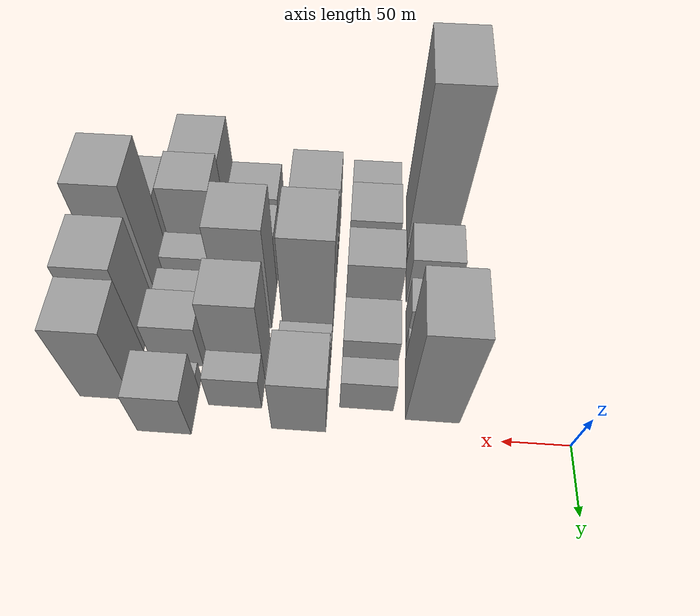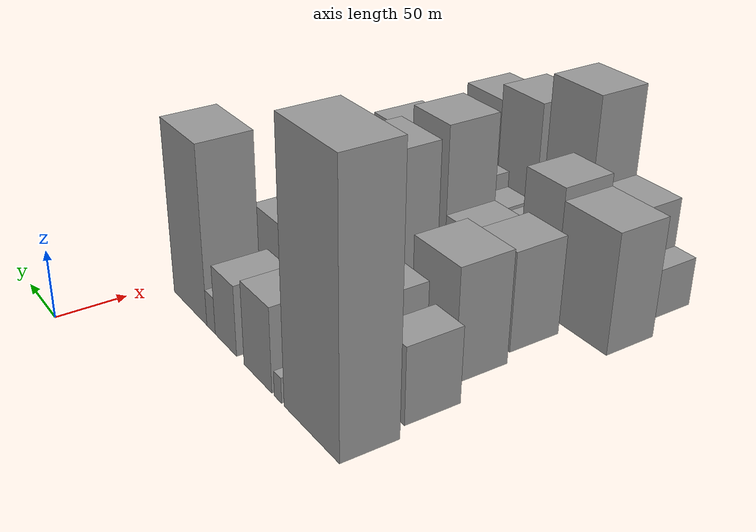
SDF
<sdf version="1.6">
 <world name="default">
  <model name="building_18">
   <static>1</static>
   <pose>100.0000 -195.5753 0 0.000000 0.000000 0.000000</pose>
   <link name="link">
    <pose>0 0 93.00 0 0 0</pose>
    <collision name="collision"><geometry><box><size>40.0000 61.5694 186.0000</size></box></geometry></collision>
    <visual name="visual">
     <cast_shadows>0</cast_shadows>
     <geometry><box><size>40.0000 61.5694 186.0000</size></box></geometry>
     <material>
      <script>
       <uri>model://grey_wall/materials/scripts</uri>
       <uri>model://grey_wall/materials/textures</uri>
       <name>vrc/grey_wall</name>
      </script>
     </material>
    </visual>
   </link>
  </model>
  <model name="building_19">
   <static>1</static>
   <pose>100.0000 -157.3529 0 0.000000 0.000000 0.000000</pose>
   <link name="link">
    <pose>0 0 9.00 0 0 0</pose>
    <collision name="collision"><geometry><box><size>40.0000 8.8755 18.0000</size></box></geometry></collision>
    <visual name="visual">
     <cast_shadows>0</cast_shadows>
     <geometry><box><size>40.0000 8.8755 18.0000</size></box></geometry>
     <material>
      <script>
       <uri>model://grey_wall/materials/scripts</uri>
       <uri>model://grey_wall/materials/textures</uri>
       <name>vrc/grey_wall</name>
      </script>
     </material>
    </visual>
   </link>
  </model>
  <model name="building_20">
   <static>1</static>
   <pose>100.0000 -132.1527 0 0.000000 0.000000 0.000000</pose>
   <link name="link">
    <pose>0 0 30.00 0 0 0</pose>
    <collision name="collision"><geometry><box><size>40.0000 35.5249 60.0000</size></box></geometry></collision>
    <visual name="visual">
     <cast_shadows>0</cast_shadows>
     <geometry><box><size>40.0000 35.5249 60.0000</size></box></geometry>
     <material>
      <script>
       <uri>model://grey_wall/materials/scripts</uri>
       <uri>model://grey_wall/materials/textures</uri>
       <name>vrc/grey_wall</name>
      </script>
     </material>
    </visual>
   </link>
  </model>
  <model name="building_21">
   <static>1</static>
   <pose>100.0000 -89.5267 0 0.000000 0.000000 0.000000</pose>
   <link name="link">
    <pose>0 0 25.50 0 0 0</pose>
    <collision name="collision"><geometry><box><size>40.0000 29.7271 51.0000</size></box></geometry></collision>
    <visual name="visual">
     <cast_shadows>0</cast_shadows>
     <geometry><box><size>40.0000 29.7271 51.0000</size></box></geometry>
     <material>
      <script>
       <uri>model://grey_wall/materials/scripts</uri>
       <uri>model://grey_wall/materials/textures</uri>
       <name>vrc/grey_wall</name>
      </script>
     </material>
    </visual>
   </link>
  </model>
  <model name="building_22">
   <static>1</static>
   <pose>100.0000 -68.5226 0 0.000000 0.000000 0.000000</pose>
   <link name="link">
    <pose>0 0 13.50 0 0 0</pose>
    <collision name="collision"><geometry><box><size>40.0000 12.2811 27.0000</size></box></geometry></collision>
    <visual name="visual">
     <cast_shadows>0</cast_shadows>
     <geometry><box><size>40.0000 12.2811 27.0000</size></box></geometry>
     <material>
      <script>
       <uri>model://grey_wall/materials/scripts</uri>
       <uri>model://grey_wall/materials/textures</uri>
       <name>vrc/grey_wall</name>
      </script>
     </material>
    </visual>
   </link>
  </model>
  <model name="building_23">
   <static>1</static>
   <pose>100.0000 -37.1999 0 0.000000 0.000000 0.000000</pose>
   <link name="link">
    <pose>0 0 64.50 0 0 0</pose>
    <collision name="collision"><geometry><box><size>40.0000 50.3643 129.0000</size></box></geometry></collision>
    <visual name="visual">
     <cast_shadows>0</cast_shadows>
     <geometry><box><size>40.0000 50.3643 129.0000</size></box></geometry>
     <material>
      <script>
       <uri>model://grey_wall/materials/scripts</uri>
       <uri>model://grey_wall/materials/textures</uri>
       <name>vrc/grey_wall</name>
      </script>
     </material>
    </visual>
   </link>
  </model>
  <model name="building_67">
   <static>1</static>
   <pose>149.0000 -203.9752 0 0.000000 0.000000 0.000000</pose>
   <link name="link">
    <pose>0 0 27.00 0 0 0</pose>
    <collision name="collision"><geometry><box><size>40.0000 27.6906 54.0000</size></box></geometry></collision>
    <visual name="visual">
     <cast_shadows>0</cast_shadows>
     <geometry><box><size>40.0000 27.6906 54.0000</size></box></geometry>
     <material>
      <script>
       <uri>model://grey_wall/materials/scripts</uri>
       <uri>model://grey_wall/materials/textures</uri>
       <name>vrc/grey_wall</name>
      </script>
     </material>
    </visual>
   </link>
  </model>
  <model name="building_68">
   <static>1</static>
   <pose>149.0000 -163.5747 0 0.000000 0.000000 0.000000</pose>
   <link name="link">
    <pose>0 0 33.00 0 0 0</pose>
    <collision name="collision"><geometry><box><size>40.0000 39.1105 66.0000</size></box></geometry></collision>
    <visual name="visual">
     <cast_shadows>0</cast_shadows>
     <geometry><box><size>40.0000 39.1105 66.0000</size></box></geometry>
     <material>
      <script>
       <uri>model://grey_wall/materials/scripts</uri>
       <uri>model://grey_wall/materials/textures</uri>
       <name>vrc/grey_wall</name>
      </script>
     </material>
    </visual>
   </link>
  </model>
  <model name="building_69">
   <static>1</static>
   <pose>149.0000 -134.3335 0 0.000000 0.000000 0.000000</pose>
   <link name="link">
    <pose>0 0 16.50 0 0 0</pose>
    <collision name="collision"><geometry><box><size>40.0000 19.3720 33.0000</size></box></geometry></collision>
    <visual name="visual">
     <cast_shadows>0</cast_shadows>
     <geometry><box><size>40.0000 19.3720 33.0000</size></box></geometry>
     <material>
      <script>
       <uri>model://grey_wall/materials/scripts</uri>
       <uri>model://grey_wall/materials/textures</uri>
       <name>vrc/grey_wall</name>
      </script>
     </material>
    </visual>
   </link>
  </model>
  <model name="building_70">
   <static>1</static>
   <pose>149.0000 -98.1172 0 0.000000 0.000000 0.000000</pose>
   <link name="link">
    <pose>0 0 48.00 0 0 0</pose>
    <collision name="collision"><geometry><box><size>40.0000 33.0605 96.0000</size></box></geometry></collision>
    <visual name="visual">
     <cast_shadows>0</cast_shadows>
     <geometry><box><size>40.0000 33.0605 96.0000</size></box></geometry>
     <material>
      <script>
       <uri>model://grey_wall/materials/scripts</uri>
       <uri>model://grey_wall/materials/textures</uri>
       <name>vrc/grey_wall</name>
      </script>
     </material>
    </visual>
   </link>
  </model>
  <model name="building_71">
   <static>1</static>
   <pose>149.0000 -78.0625 0 0.000000 0.000000 0.000000</pose>
   <link name="link">
    <pose>0 0 7.50 0 0 0</pose>
    <collision name="collision"><geometry><box><size>40.0000 7.0490 15.0000</size></box></geometry></collision>
    <visual name="visual">
     <cast_shadows>0</cast_shadows>
     <geometry><box><size>40.0000 7.0490 15.0000</size></box></geometry>
     <material>
      <script>
       <uri>model://grey_wall/materials/scripts</uri>
       <uri>model://grey_wall/materials/textures</uri>
       <name>vrc/grey_wall</name>
      </script>
     </material>
    </visual>
   </link>
  </model>
  <model name="building_72">
   <static>1</static>
   <pose>149.0000 -56.8983 0 0.000000 0.000000 0.000000</pose>
   <link name="link">
    <pose>0 0 33.00 0 0 0</pose>
    <collision name="collision"><geometry><box><size>40.0000 35.2795 66.0000</size></box></geometry></collision>
    <visual name="visual">
     <cast_shadows>0</cast_shadows>
     <geometry><box><size>40.0000 35.2795 66.0000</size></box></geometry>
     <material>
      <script>
       <uri>model://grey_wall/materials/scripts</uri>
       <uri>model://grey_wall/materials/textures</uri>
       <name>vrc/grey_wall</name>
      </script>
     </material>
    </visual>
   </link>
  </model>
  <model name="building_73">
   <static>1</static>
   <pose>149.0000 -28.7446 0 0.000000 0.000000 0.000000</pose>
   <link name="link">
    <pose>0 0 21.00 0 0 0</pose>
    <collision name="collision"><geometry><box><size>40.0000 21.0278 42.0000</size></box></geometry></collision>
    <visual name="visual">
     <cast_shadows>0</cast_shadows>
     <geometry><box><size>40.0000 21.0278 42.0000</size></box></geometry>
     <material>
      <script>
       <uri>model://grey_wall/materials/scripts</uri>
       <uri>model://grey_wall/materials/textures</uri>
       <name>vrc/grey_wall</name>
      </script>
     </material>
    </visual>
   </link>
  </model>
  <model name="building_116">
   <static>1</static>
   <pose>198.0000 -177.5219 0 0.000000 0.000000 0.000000</pose>
   <link name="link">
    <pose>0 0 40.50 0 0 0</pose>
    <collision name="collision"><geometry><box><size>40.0000 46.4395 81.0000</size></box></geometry></collision>
    <visual name="visual">
     <cast_shadows>0</cast_shadows>
     <geometry><box><size>40.0000 46.4395 81.0000</size></box></geometry>
     <material>
      <script>
       <uri>model://grey_wall/materials/scripts</uri>
       <uri>model://grey_wall/materials/textures</uri>
       <name>vrc/grey_wall</name>
      </script>
     </material>
    </visual>
   </link>
  </model>
  <model name="building_117">
   <static>1</static>
   <pose>198.0000 -144.3898 0 0.000000 0.000000 0.000000</pose>
   <link name="link">
    <pose>0 0 18.00 0 0 0</pose>
    <collision name="collision"><geometry><box><size>40.0000 19.8248 36.0000</size></box></geometry></collision>
    <visual name="visual">
     <cast_shadows>0</cast_shadows>
     <geometry><box><size>40.0000 19.8248 36.0000</size></box></geometry>
     <material>
      <script>
       <uri>model://grey_wall/materials/scripts</uri>
       <uri>model://grey_wall/materials/textures</uri>
       <name>vrc/grey_wall</name>
      </script>
     </material>
    </visual>
   </link>
  </model>
  <model name="building_118">
   <static>1</static>
   <pose>198.0000 -103.3089 0 0.000000 0.000000 0.000000</pose>
   <link name="link">
    <pose>0 0 61.50 0 0 0</pose>
    <collision name="collision"><geometry><box><size>40.0000 44.3372 123.0000</size></box></geometry></collision>
    <visual name="visual">
     <cast_shadows>0</cast_shadows>
     <geometry><box><size>40.0000 44.3372 123.0000</size></box></geometry>
     <material>
      <script>
       <uri>model://grey_wall/materials/scripts</uri>
       <uri>model://grey_wall/materials/textures</uri>
       <name>vrc/grey_wall</name>
      </script>
     </material>
    </visual>
   </link>
  </model>
  <model name="building_119">
   <static>1</static>
   <pose>198.0000 -63.8721 0 0.000000 0.000000 0.000000</pose>
   <link name="link">
    <pose>0 0 15.00 0 0 0</pose>
    <collision name="collision"><geometry><box><size>40.0000 16.5363 30.0000</size></box></geometry></collision>
    <visual name="visual">
     <cast_shadows>0</cast_shadows>
     <geometry><box><size>40.0000 16.5363 30.0000</size></box></geometry>
     <material>
      <script>
       <uri>model://grey_wall/materials/scripts</uri>
       <uri>model://grey_wall/materials/textures</uri>
       <name>vrc/grey_wall</name>
      </script>
     </material>
    </visual>
   </link>
  </model>
  <model name="building_120">
   <static>1</static>
   <pose>198.0000 -49.3728 0 0.000000 0.000000 0.000000</pose>
   <link name="link">
    <pose>0 0 13.50 0 0 0</pose>
    <collision name="collision"><geometry><box><size>40.0000 12.4622 27.0000</size></box></geometry></collision>
    <visual name="visual">
     <cast_shadows>0</cast_shadows>
     <geometry><box><size>40.0000 12.4622 27.0000</size></box></geometry>
     <material>
      <script>
       <uri>model://grey_wall/materials/scripts</uri>
       <uri>model://grey_wall/materials/textures</uri>
       <name>vrc/grey_wall</name>
      </script>
     </material>
    </visual>
   </link>
  </model>
  <model name="building_121">
   <static>1</static>
   <pose>198.0000 -18.6321 0 0.000000 0.000000 0.000000</pose>
   <link name="link">
    <pose>0 0 37.50 0 0 0</pose>
    <collision name="collision"><geometry><box><size>40.0000 41.0193 75.0000</size></box></geometry></collision>
    <visual name="visual">
     <cast_shadows>0</cast_shadows>
     <geometry><box><size>40.0000 41.0193 75.0000</size></box></geometry>
     <material>
      <script>
       <uri>model://grey_wall/materials/scripts</uri>
       <uri>model://grey_wall/materials/textures</uri>
       <name>vrc/grey_wall</name>
      </script>
     </material>
    </visual>
   </link>
  </model>
  <model name="building_162">
   <static>1</static>
   <pose>247.0000 -173.6595 0 0.000000 0.000000 0.000000</pose>
   <link name="link">
    <pose>0 0 36.00 0 0 0</pose>
    <collision name="collision"><geometry><box><size>40.0000 36.9997 72.0000</size></box></geometry></collision>
    <visual name="visual">
     <cast_shadows>0</cast_shadows>
     <geometry><box><size>40.0000 36.9997 72.0000</size></box></geometry>
     <material>
      <script>
       <uri>model://grey_wall/materials/scripts</uri>
       <uri>model://grey_wall/materials/textures</uri>
       <name>vrc/grey_wall</name>
      </script>
     </material>
    </visual>
   </link>
  </model>
  <model name="building_163">
   <static>1</static>
   <pose>247.0000 -138.2125 0 0.000000 0.000000 0.000000</pose>
   <link name="link">
    <pose>0 0 33.00 0 0 0</pose>
    <collision name="collision"><geometry><box><size>40.0000 33.8942 66.0000</size></box></geometry></collision>
    <visual name="visual">
     <cast_shadows>0</cast_shadows>
     <geometry><box><size>40.0000 33.8942 66.0000</size></box></geometry>
     <material>
      <script>
       <uri>model://grey_wall/materials/scripts</uri>
       <uri>model://grey_wall/materials/textures</uri>
       <name>vrc/grey_wall</name>
      </script>
     </material>
    </visual>
   </link>
  </model>
  <model name="building_164">
   <static>1</static>
   <pose>247.0000 -101.5789 0 0.000000 0.000000 0.000000</pose>
   <link name="link">
    <pose>0 0 64.50 0 0 0</pose>
    <collision name="collision"><geometry><box><size>40.0000 39.3730 129.0000</size></box></geometry></collision>
    <visual name="visual">
     <cast_shadows>0</cast_shadows>
     <geometry><box><size>40.0000 39.3730 129.0000</size></box></geometry>
     <material>
      <script>
       <uri>model://grey_wall/materials/scripts</uri>
       <uri>model://grey_wall/materials/textures</uri>
       <name>vrc/grey_wall</name>
      </script>
     </material>
    </visual>
   </link>
  </model>
  <model name="building_165">
   <static>1</static>
   <pose>247.0000 -53.8184 0 0.000000 0.000000 0.000000</pose>
   <link name="link">
    <pose>0 0 54.00 0 0 0</pose>
    <collision name="collision"><geometry><box><size>40.0000 36.1479 108.0000</size></box></geometry></collision>
    <visual name="visual">
     <cast_shadows>0</cast_shadows>
     <geometry><box><size>40.0000 36.1479 108.0000</size></box></geometry>
     <material>
      <script>
       <uri>model://grey_wall/materials/scripts</uri>
       <uri>model://grey_wall/materials/textures</uri>
       <name>vrc/grey_wall</name>
      </script>
     </material>
    </visual>
   </link>
  </model>
  <model name="building_166">
   <static>1</static>
   <pose>247.0000 -24.4421 0 0.000000 0.000000 0.000000</pose>
   <link name="link">
    <pose>0 0 22.50 0 0 0</pose>
    <collision name="collision"><geometry><box><size>40.0000 22.6046 45.0000</size></box></geometry></collision>
    <visual name="visual">
     <cast_shadows>0</cast_shadows>
     <geometry><box><size>40.0000 22.6046 45.0000</size></box></geometry>
     <material>
      <script>
       <uri>model://grey_wall/materials/scripts</uri>
       <uri>model://grey_wall/materials/textures</uri>
       <name>vrc/grey_wall</name>
      </script>
     </material>
    </visual>
   </link>
  </model>
  <model name="building_207">
   <static>1</static>
   <pose>296.0000 -202.3090 0 0.000000 0.000000 0.000000</pose>
   <link name="link">
    <pose>0 0 43.50 0 0 0</pose>
    <collision name="collision"><geometry><box><size>40.0000 49.7663 87.0000</size></box></geometry></collision>
    <visual name="visual">
     <cast_shadows>0</cast_shadows>
     <geometry><box><size>40.0000 49.7663 87.0000</size></box></geometry>
     <material>
      <script>
       <uri>model://grey_wall/materials/scripts</uri>
       <uri>model://grey_wall/materials/textures</uri>
       <name>vrc/grey_wall</name>
      </script>
     </material>
    </visual>
   </link>
  </model>
  <model name="building_208">
   <static>1</static>
   <pose>296.0000 -158.6654 0 0.000000 0.000000 0.000000</pose>
   <link name="link">
    <pose>0 0 48.00 0 0 0</pose>
    <collision name="collision"><geometry><box><size>40.0000 37.5209 96.0000</size></box></geometry></collision>
    <visual name="visual">
     <cast_shadows>0</cast_shadows>
     <geometry><box><size>40.0000 37.5209 96.0000</size></box></geometry>
     <material>
      <script>
       <uri>model://grey_wall/materials/scripts</uri>
       <uri>model://grey_wall/materials/textures</uri>
       <name>vrc/grey_wall</name>
      </script>
     </material>
    </visual>
   </link>
  </model>
  <model name="building_209">
   <static>1</static>
   <pose>296.0000 -123.6885 0 0.000000 0.000000 0.000000</pose>
   <link name="link">
    <pose>0 0 24.00 0 0 0</pose>
    <collision name="collision"><geometry><box><size>40.0000 24.4328 48.0000</size></box></geometry></collision>
    <visual name="visual">
     <cast_shadows>0</cast_shadows>
     <geometry><box><size>40.0000 24.4328 48.0000</size></box></geometry>
     <material>
      <script>
       <uri>model://grey_wall/materials/scripts</uri>
       <uri>model://grey_wall/materials/textures</uri>
       <name>vrc/grey_wall</name>
      </script>
     </material>
    </visual>
   </link>
  </model>
  <model name="building_210">
   <static>1</static>
   <pose>296.0000 -90.1692 0 0.000000 0.000000 0.000000</pose>
   <link name="link">
    <pose>0 0 22.50 0 0 0</pose>
    <collision name="collision"><geometry><box><size>40.0000 26.6058 45.0000</size></box></geometry></collision>
    <visual name="visual">
     <cast_shadows>0</cast_shadows>
     <geometry><box><size>40.0000 26.6058 45.0000</size></box></geometry>
     <material>
      <script>
       <uri>model://grey_wall/materials/scripts</uri>
       <uri>model://grey_wall/materials/textures</uri>
       <name>vrc/grey_wall</name>
      </script>
     </material>
    </visual>
   </link>
  </model>
  <model name="building_211">
   <static>1</static>
   <pose>296.0000 -60.7212 0 0.000000 0.000000 0.000000</pose>
   <link name="link">
    <pose>0 0 28.50 0 0 0</pose>
    <collision name="collision"><geometry><box><size>40.0000 32.2902 57.0000</size></box></geometry></collision>
    <visual name="visual">
     <cast_shadows>0</cast_shadows>
     <geometry><box><size>40.0000 32.2902 57.0000</size></box></geometry>
     <material>
      <script>
       <uri>model://grey_wall/materials/scripts</uri>
       <uri>model://grey_wall/materials/textures</uri>
       <name>vrc/grey_wall</name>
      </script>
     </material>
    </visual>
   </link>
  </model>
  <model name="building_212">
   <static>1</static>
   <pose>296.0000 -30.0052 0 0.000000 0.000000 0.000000</pose>
   <link name="link">
    <pose>0 0 12.00 0 0 0</pose>
    <collision name="collision"><geometry><box><size>40.0000 11.1420 24.0000</size></box></geometry></collision>
    <visual name="visual">
     <cast_shadows>0</cast_shadows>
     <geometry><box><size>40.0000 11.1420 24.0000</size></box></geometry>
     <material>
      <script>
       <uri>model://grey_wall/materials/scripts</uri>
       <uri>model://grey_wall/materials/textures</uri>
       <name>vrc/grey_wall</name>
      </script>
     </material>
    </visual>
   </link>
  </model>
  <model name="building_213">
   <static>1</static>
   <pose>296.0000 -6.8735 0 0.000000 0.000000 0.000000</pose>
   <link name="link">
    <pose>0 0 30.00 0 0 0</pose>
    <collision name="collision"><geometry><box><size>40.0000 35.1214 60.0000</size></box></geometry></collision>
    <visual name="visual">
     <cast_shadows>0</cast_shadows>
     <geometry><box><size>40.0000 35.1214 60.0000</size></box></geometry>
     <material>
      <script>
       <uri>model://grey_wall/materials/scripts</uri>
       <uri>model://grey_wall/materials/textures</uri>
       <name>vrc/grey_wall</name>
      </script>
     </material>
    </visual>
   </link>
  </model>
  <model name="building_251">
   <static>1</static>
   <pose>345.0000 -202.5502 0 0.000000 0.000000 0.000000</pose>
   <link name="link">
    <pose>0 0 18.00 0 0 0</pose>
    <collision name="collision"><geometry><box><size>40.0000 18.9243 36.0000</size></box></geometry></collision>
    <visual name="visual">
     <cast_shadows>0</cast_shadows>
     <geometry><box><size>40.0000 18.9243 36.0000</size></box></geometry>
     <material>
      <script>
       <uri>model://grey_wall/materials/scripts</uri>
       <uri>model://grey_wall/materials/textures</uri>
       <name>vrc/grey_wall</name>
      </script>
     </material>
    </visual>
   </link>
  </model>
  <model name="building_252">
   <static>1</static>
   <pose>345.0000 -172.2851 0 0.000000 0.000000 0.000000</pose>
   <link name="link">
    <pose>0 0 36.00 0 0 0</pose>
    <collision name="collision"><geometry><box><size>40.0000 41.6059 72.0000</size></box></geometry></collision>
    <visual name="visual">
     <cast_shadows>0</cast_shadows>
     <geometry><box><size>40.0000 41.6059 72.0000</size></box></geometry>
     <material>
      <script>
       <uri>model://grey_wall/materials/scripts</uri>
       <uri>model://grey_wall/materials/textures</uri>
       <name>vrc/grey_wall</name>
      </script>
     </material>
    </visual>
   </link>
  </model>
  <model name="building_253">
   <static>1</static>
   <pose>345.0000 -128.0617 0 0.000000 0.000000 0.000000</pose>
   <link name="link">
    <pose>0 0 69.00 0 0 0</pose>
    <collision name="collision"><geometry><box><size>40.0000 46.8409 138.0000</size></box></geometry></collision>
    <visual name="visual">
     <cast_shadows>0</cast_shadows>
     <geometry><box><size>40.0000 46.8409 138.0000</size></box></geometry>
     <material>
      <script>
       <uri>model://grey_wall/materials/scripts</uri>
       <uri>model://grey_wall/materials/textures</uri>
       <name>vrc/grey_wall</name>
      </script>
     </material>
    </visual>
   </link>
  </model>
  <model name="building_254">
   <static>1</static>
   <pose>345.0000 -75.7799 0 0.000000 0.000000 0.000000</pose>
   <link name="link">
    <pose>0 0 57.00 0 0 0</pose>
    <collision name="collision"><geometry><box><size>40.0000 43.7226 114.0000</size></box></geometry></collision>
    <visual name="visual">
     <cast_shadows>0</cast_shadows>
     <geometry><box><size>40.0000 43.7226 114.0000</size></box></geometry>
     <material>
      <script>
       <uri>model://grey_wall/materials/scripts</uri>
       <uri>model://grey_wall/materials/textures</uri>
       <name>vrc/grey_wall</name>
      </script>
     </material>
    </visual>
   </link>
  </model>
  <model name="building_255">
   <static>1</static>
   <pose>345.0000 -33.5199 0 0.000000 0.000000 0.000000</pose>
   <link name="link">
    <pose>0 0 51.00 0 0 0</pose>
    <collision name="collision"><geometry><box><size>40.0000 40.7973 102.0000</size></box></geometry></collision>
    <visual name="visual">
     <cast_shadows>0</cast_shadows>
     <geometry><box><size>40.0000 40.7973 102.0000</size></box></geometry>
     <material>
      <script>
       <uri>model://grey_wall/materials/scripts</uri>
       <uri>model://grey_wall/materials/textures</uri>
       <name>vrc/grey_wall</name>
      </script>
     </material>
    </visual>
   </link>
  </model>
 </world>
</sdf>
